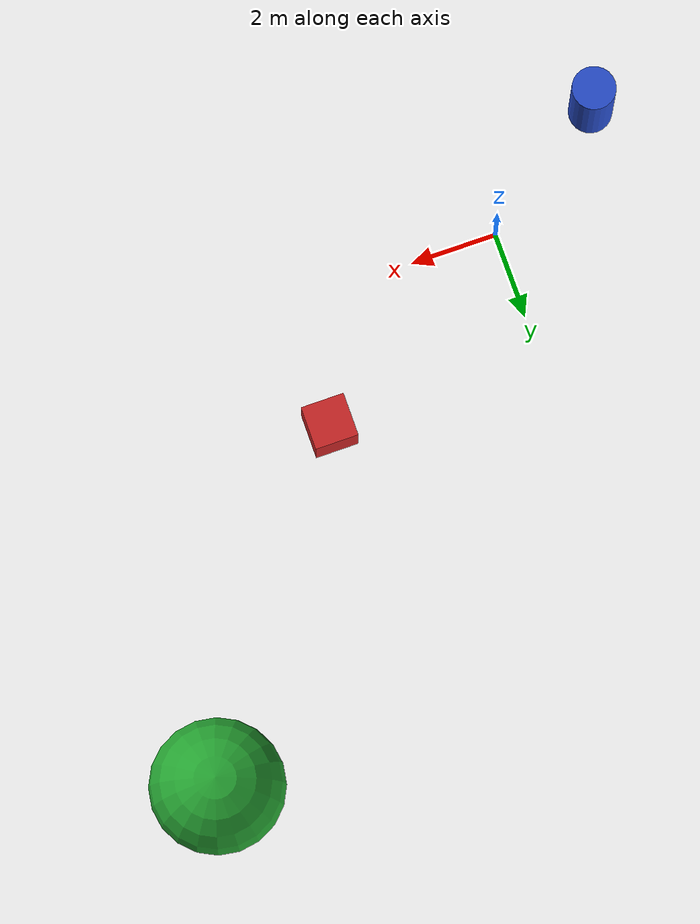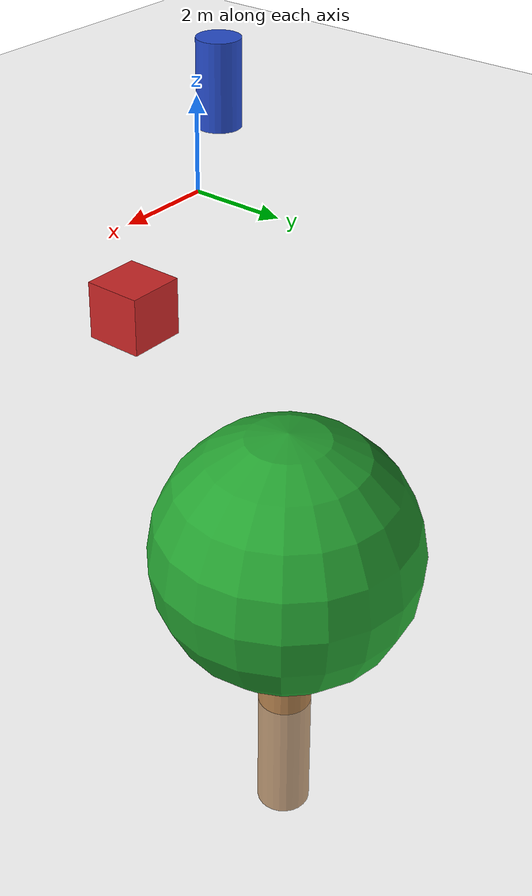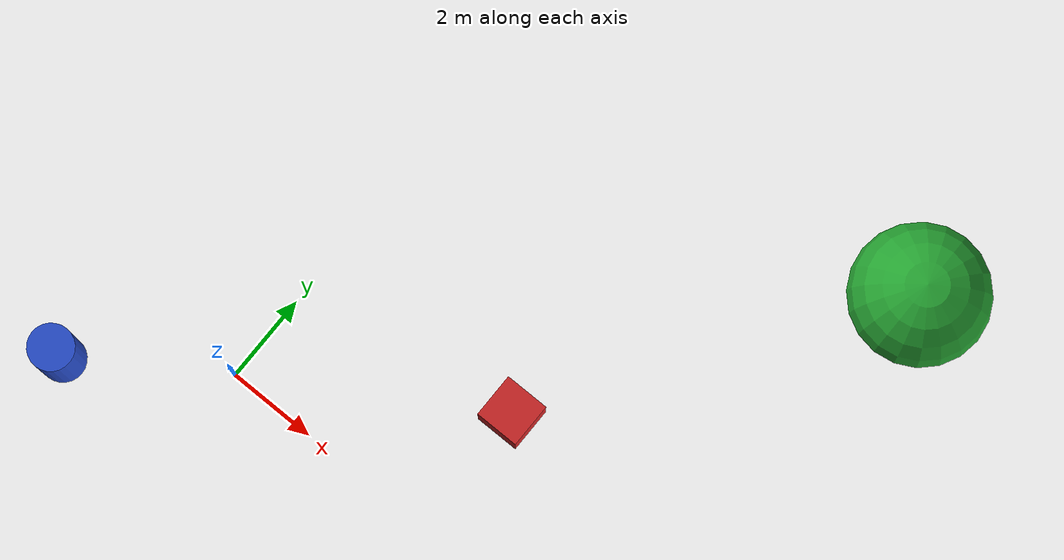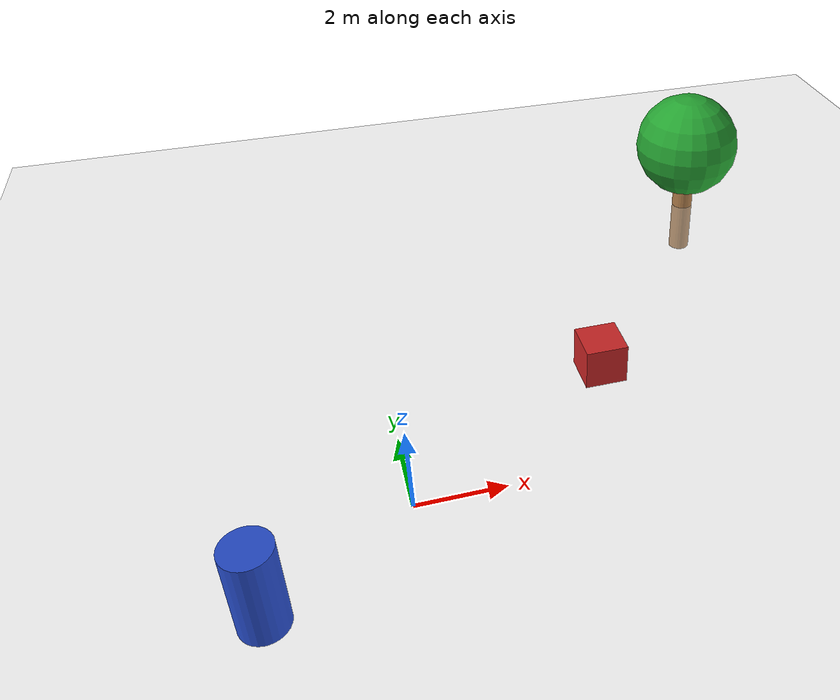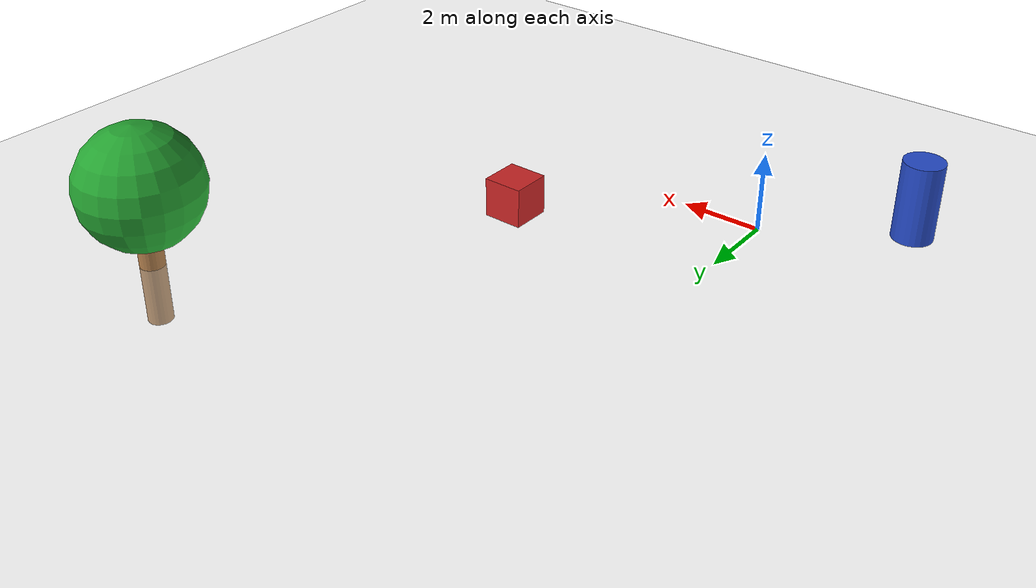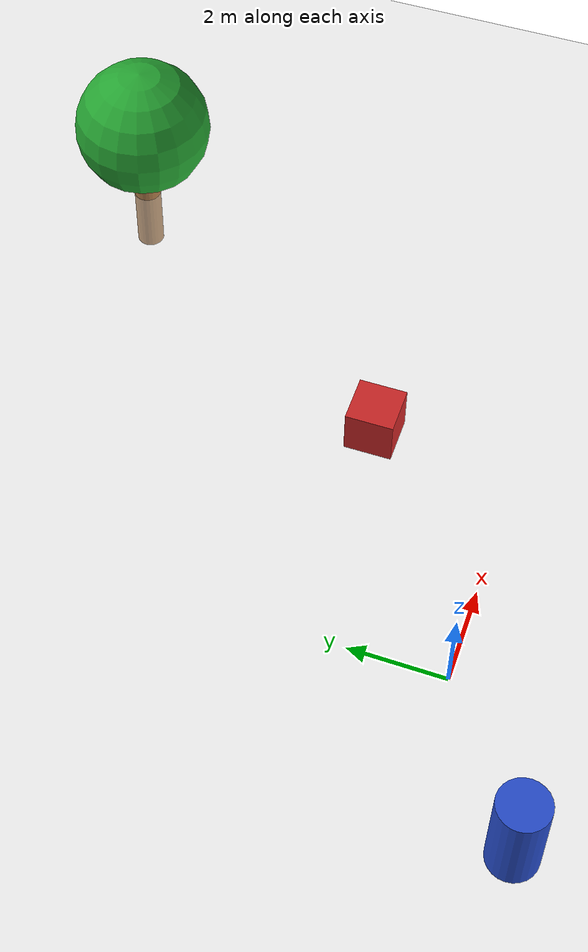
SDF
<?xml version="1.0" ?>
<sdf version="1.7">
  <world name="drone_world">

    <!-- Physics settings -->
    <physics name="default_physics" default="0" type="ode">
      <max_step_size>0.001</max_step_size>
      <real_time_factor>1.0</real_time_factor>
      <real_time_update_rate>1000</real_time_update_rate>
    </physics>

    <!-- Scene settings -->
    <scene>
      <ambient>0.4 0.4 0.4 1</ambient>
      <background>0.7 0.7 0.7 1</background>
      <shadows>true</shadows>
    </scene>

    <!-- Lighting -->
    <light type="directional" name="sun">
      <cast_shadows>true</cast_shadows>
      <pose>0 0 10 0 0 0</pose>
      <diffuse>0.8 0.8 0.8 1</diffuse>
      <specular>0.2 0.2 0.2 1</specular>
      <attenuation>
        <range>1000</range>
        <constant>0.9</constant>
        <linear>0.01</linear>
        <quadratic>0.001</quadratic>
      </attenuation>
      <direction>-0.5 0.1 -0.9</direction>
    </light>

    <!-- Ground plane -->
    <model name="ground_plane">
      <static>true</static>
      <link name="link">
        <collision name="collision">
          <geometry>
            <plane>
              <normal>0 0 1</normal>
              <size>100 100</size>
            </plane>
          </geometry>
          <surface>
            <contact>
              <collide_bitmask>65535</collide_bitmask>
              <ode>
                <cfm>0</cfm>
                <erp>0.2</erp>
                <mu>1</mu>
                <mu2>1</mu2>
              </ode>
            </contact>
            <friction>
              <ode>
                <mu>1</mu>
                <mu2>1</mu2>
              </ode>
            </friction>
          </surface>
        </collision>
        <visual name="visual">
          <cast_shadows>false</cast_shadows>
          <geometry>
            <plane>
              <normal>0 0 1</normal>
              <size>100 100</size>
            </plane>
          </geometry>
          <material>
            <script>
              <uri>file://media/materials/scripts/gazebo.material</uri>
              <name>Gazebo/Grey</name>
            </script>
          </material>
        </visual>
      </link>
    </model>

    <!-- Some obstacles for testing -->
    <model name="box_obstacle_1">
      <pose>5 3 0.5 0 0 0</pose>
      <static>true</static>
      <link name="link">
        <collision name="collision">
          <geometry>
            <box>
              <size>1 1 1</size>
            </box>
          </geometry>
        </collision>
        <visual name="visual">
          <geometry>
            <box>
              <size>1 1 1</size>
            </box>
          </geometry>
          <material>
            <script>
              <uri>file://media/materials/scripts/gazebo.material</uri>
              <name>Gazebo/Red</name>
            </script>
          </material>
        </visual>
      </link>
    </model>

    <model name="cylinder_obstacle_1">
      <pose>-3 -2 1 0 0 0</pose>
      <static>true</static>
      <link name="link">
        <collision name="collision">
          <geometry>
            <cylinder>
              <radius>0.5</radius>
              <length>2</length>
            </cylinder>
          </geometry>
        </collision>
        <visual name="visual">
          <geometry>
            <cylinder>
              <radius>0.5</radius>
              <length>2</length>
            </cylinder>
          </geometry>
          <material>
            <script>
              <uri>file://media/materials/scripts/gazebo.material</uri>
              <name>Gazebo/Blue</name>
            </script>
          </material>
        </visual>
      </link>
    </model>

    <!-- Tree-like models for visual reference -->
    <model name="tree_1">
      <pose>10 10 0 0 0 0</pose>
      <static>true</static>
      <link name="trunk">
        <collision name="trunk_collision">
          <geometry>
            <cylinder>
              <radius>0.3</radius>
              <length>3</length>
            </cylinder>
          </geometry>
        </collision>
        <visual name="trunk_visual">
          <geometry>
            <cylinder>
              <radius>0.3</radius>
              <length>3</length>
            </cylinder>
          </geometry>
          <material>
            <script>
              <uri>file://media/materials/scripts/gazebo.material</uri>
              <name>Gazebo/Wood</name>
            </script>
          </material>
        </visual>
      </link>
      <link name="leaves">
        <pose>0 0 2 0 0 0</pose>
        <collision name="leaves_collision">
          <geometry>
            <sphere>
              <radius>1.5</radius>
            </sphere>
          </geometry>
        </collision>
        <visual name="leaves_visual">
          <geometry>
            <sphere>
              <radius>1.5</radius>
            </sphere>
          </geometry>
          <material>
            <script>
              <uri>file://media/materials/scripts/gazebo.material</uri>
              <name>Gazebo/Green</name>
            </script>
          </material>
        </visual>
      </link>
      <joint name="trunk_to_leaves" type="fixed">
        <parent>trunk</parent>
        <child>leaves</child>
      </joint>
    </model>

    <!-- Wind plugin for realistic flight conditions -->
    <plugin name="wind_plugin" filename="libgazebo_wind_plugin.so">
      <horizontal>
        <magnitude>
          <time_for_rise>10</time_for_rise>
          <sin>
            <amplitude_percent>0.05</amplitude_percent>
            <period>60</period>
          </sin>
        </magnitude>
        <direction>
          <time_for_rise>30</time_for_rise>
          <sin>
            <amplitude>5</amplitude>
            <period>40</period>
          </sin>
        </direction>
      </horizontal>
      <vertical>
        <noise type="gaussian">
          <mean>0</mean>
          <stddev>0.0</stddev>
        </noise>
      </vertical>
    </plugin>

  </world>
</sdf>
